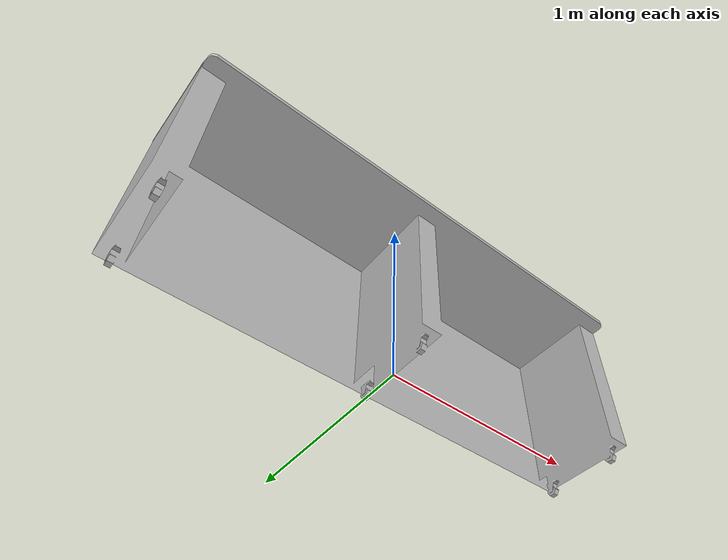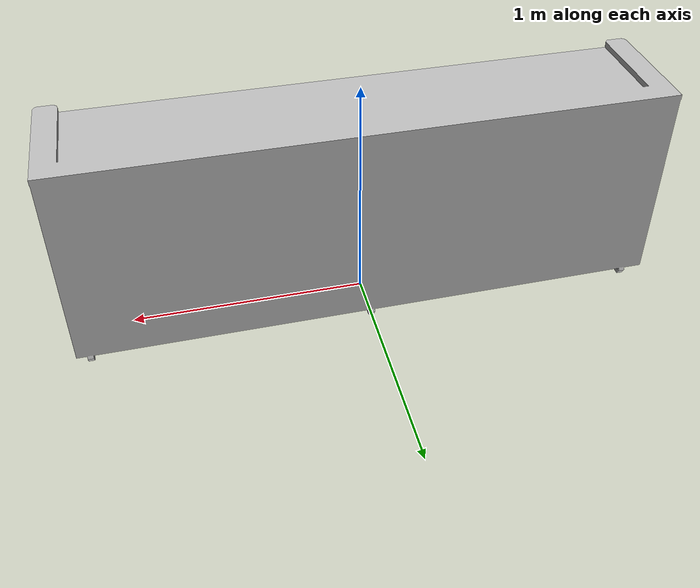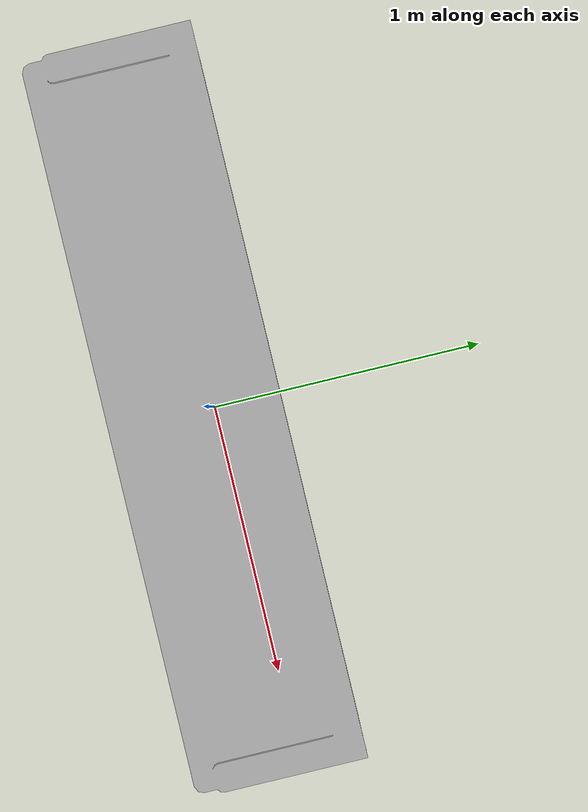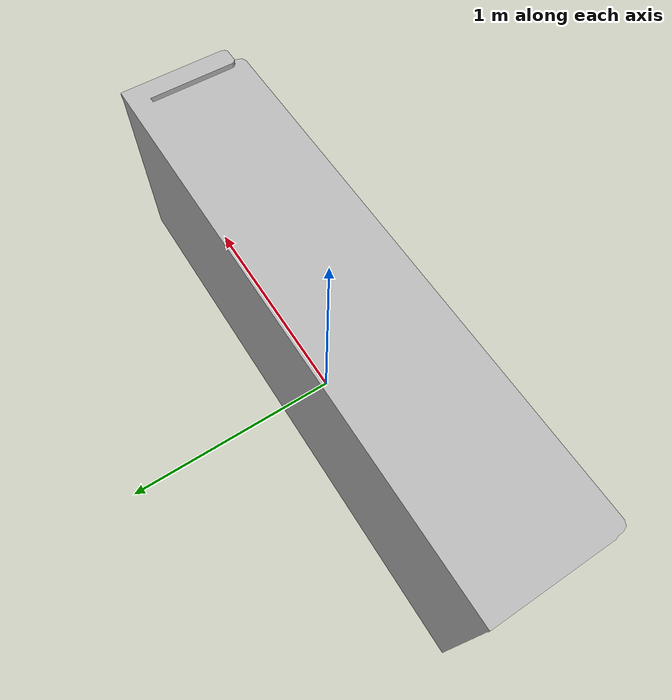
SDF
<?xml version='1.0' encoding='utf-8'?>
<sdf version="1.6">
  <model name="NurseTable">
   <static>true</static>
    <link name="body">
      <pose>0 0 0 0 0 0</pose>

      <visual name="visual">
        <geometry>
          <mesh>
            <uri>model://NurseTable/meshes/NurseTable.obj</uri>
          </mesh>
        </geometry>
      </visual>

      <collision name="collision">
        <geometry>
          <mesh>
            <uri>model://NurseTable/meshes/NurseTable_Col.obj</uri>
          </mesh>
        </geometry>
      </collision>

    </link>
  </model>
</sdf>
